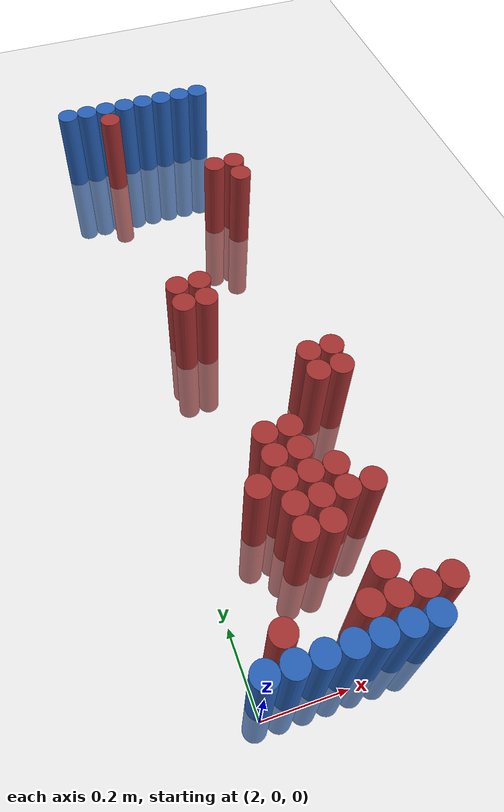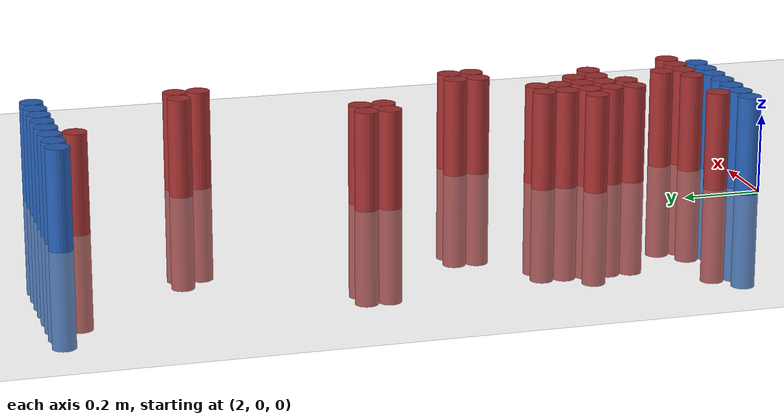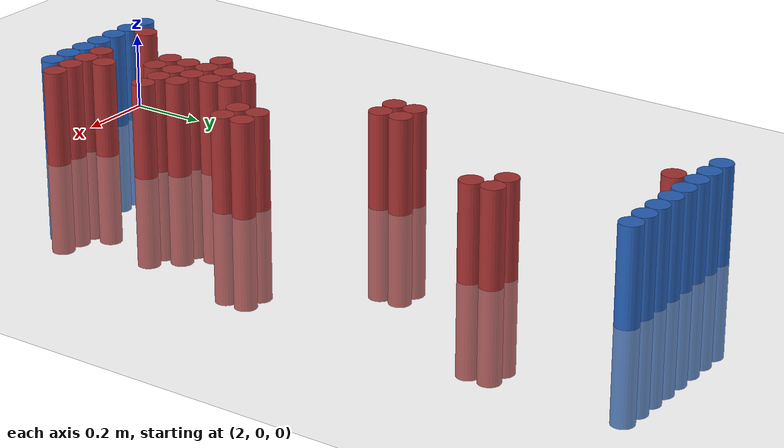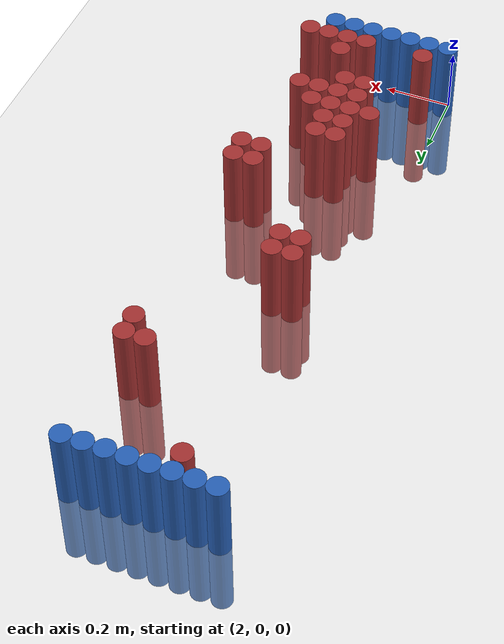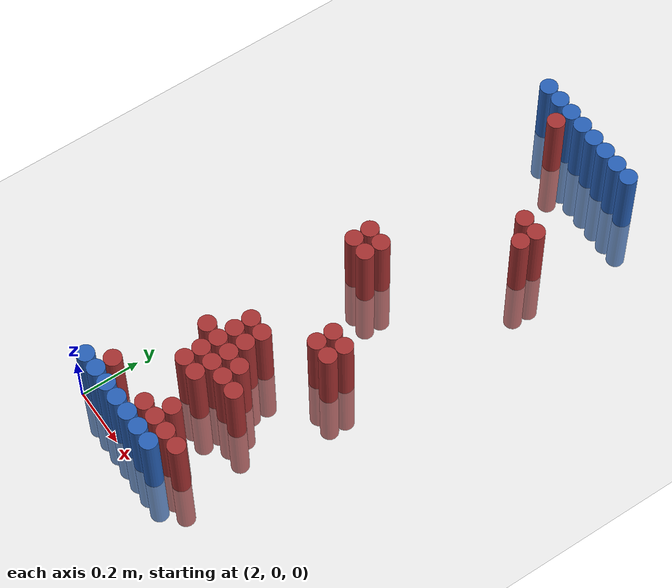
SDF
<sdf version="1.6">
 <world name="default">
  <model name="ground_plane">
   <static>1</static>
   <link name="link">
    <collision name="collision">
     <geometry><plane><normal>0 0 1</normal><size>100 100</size></plane></geometry>
     <surface><friction><ode><mu>100</mu><mu2>50</mu2></ode></friction></surface>
    </collision>
    <visual name="visual">
     <cast_shadows>0</cast_shadows>
     <geometry><plane><normal>0 0 1</normal><size>100 100</size></plane></geometry>
     <material>
      <script><uri>file://media/materials/scripts/gazebo.material</uri><name>Gazebo/Grey</name></script>
     </material>
    </visual>
   </link>
  </model>
  <model name="unit_cylinder_93">
   <static>1</static>
   <pose>2.010000 0.030000 0.000000 0.000000 0.000000 0.000000</pose>
   <link name="link">
    <inertial>
     <mass>1</mass>
     <inertia><ixx>0.145833</ixx><ixy>0</ixy><ixz>0</ixz><iyy>0.145833</iyy><iyz>0</iyz><izz>0.125</izz></inertia>
    </inertial>
    <collision name="collision">
     <geometry><cylinder><radius>0.030000</radius><length>0.5</length></cylinder></geometry>
    </collision>
    <visual name="visual">
     <geometry><cylinder><radius>0.030000</radius><length>0.5</length></cylinder></geometry>
     <material>
      <ambient>0.152000 0.379000 0.720000 1</ambient>
      <diffuse>0.152000 0.379000 0.720000 1</diffuse>
     </material>
     <material>
      <script><name>Gazebo/Grey</name><uri>file://media/materials/scripts/gazebo.material</uri></script>
     </material>
    </visual>
   </link>
  </model>
  <model name="unit_cylinder_94">
   <static>1</static>
   <pose>2.010000 1.770000 0.000000 0.000000 0.000000 0.000000</pose>
   <link name="link">
    <inertial>
     <mass>1</mass>
     <inertia><ixx>0.145833</ixx><ixy>0</ixy><ixz>0</ixz><iyy>0.145833</iyy><iyz>0</iyz><izz>0.125</izz></inertia>
    </inertial>
    <collision name="collision">
     <geometry><cylinder><radius>0.030000</radius><length>0.5</length></cylinder></geometry>
    </collision>
    <visual name="visual">
     <geometry><cylinder><radius>0.030000</radius><length>0.5</length></cylinder></geometry>
     <material>
      <ambient>0.152000 0.379000 0.720000 1</ambient>
      <diffuse>0.152000 0.379000 0.720000 1</diffuse>
     </material>
     <material>
      <script><name>Gazebo/Grey</name><uri>file://media/materials/scripts/gazebo.material</uri></script>
     </material>
    </visual>
   </link>
  </model>
  <model name="unit_cylinder_95">
   <static>1</static>
   <pose>2.070000 1.770000 0.000000 0.000000 0.000000 0.000000</pose>
   <link name="link">
    <inertial>
     <mass>1</mass>
     <inertia><ixx>0.145833</ixx><ixy>0</ixy><ixz>0</ixz><iyy>0.145833</iyy><iyz>0</iyz><izz>0.125</izz></inertia>
    </inertial>
    <collision name="collision">
     <geometry><cylinder><radius>0.030000</radius><length>0.5</length></cylinder></geometry>
    </collision>
    <visual name="visual">
     <geometry><cylinder><radius>0.030000</radius><length>0.5</length></cylinder></geometry>
     <material>
      <ambient>0.152000 0.379000 0.720000 1</ambient>
      <diffuse>0.152000 0.379000 0.720000 1</diffuse>
     </material>
     <material>
      <script><name>Gazebo/Grey</name><uri>file://media/materials/scripts/gazebo.material</uri></script>
     </material>
    </visual>
   </link>
  </model>
  <model name="unit_cylinder_96">
   <static>1</static>
   <pose>2.130000 1.770000 0.000000 0.000000 0.000000 0.000000</pose>
   <link name="link">
    <inertial>
     <mass>1</mass>
     <inertia><ixx>0.145833</ixx><ixy>0</ixy><ixz>0</ixz><iyy>0.145833</iyy><iyz>0</iyz><izz>0.125</izz></inertia>
    </inertial>
    <collision name="collision">
     <geometry><cylinder><radius>0.030000</radius><length>0.5</length></cylinder></geometry>
    </collision>
    <visual name="visual">
     <geometry><cylinder><radius>0.030000</radius><length>0.5</length></cylinder></geometry>
     <material>
      <ambient>0.152000 0.379000 0.720000 1</ambient>
      <diffuse>0.152000 0.379000 0.720000 1</diffuse>
     </material>
     <material>
      <script><name>Gazebo/Grey</name><uri>file://media/materials/scripts/gazebo.material</uri></script>
     </material>
    </visual>
   </link>
  </model>
  <model name="unit_cylinder_97">
   <static>1</static>
   <pose>2.190000 1.770000 0.000000 0.000000 0.000000 0.000000</pose>
   <link name="link">
    <inertial>
     <mass>1</mass>
     <inertia><ixx>0.145833</ixx><ixy>0</ixy><ixz>0</ixz><iyy>0.145833</iyy><iyz>0</iyz><izz>0.125</izz></inertia>
    </inertial>
    <collision name="collision">
     <geometry><cylinder><radius>0.030000</radius><length>0.5</length></cylinder></geometry>
    </collision>
    <visual name="visual">
     <geometry><cylinder><radius>0.030000</radius><length>0.5</length></cylinder></geometry>
     <material>
      <ambient>0.152000 0.379000 0.720000 1</ambient>
      <diffuse>0.152000 0.379000 0.720000 1</diffuse>
     </material>
     <material>
      <script><name>Gazebo/Grey</name><uri>file://media/materials/scripts/gazebo.material</uri></script>
     </material>
    </visual>
   </link>
  </model>
  <model name="unit_cylinder_98">
   <static>1</static>
   <pose>2.250000 1.770000 0.000000 0.000000 0.000000 0.000000</pose>
   <link name="link">
    <inertial>
     <mass>1</mass>
     <inertia><ixx>0.145833</ixx><ixy>0</ixy><ixz>0</ixz><iyy>0.145833</iyy><iyz>0</iyz><izz>0.125</izz></inertia>
    </inertial>
    <collision name="collision">
     <geometry><cylinder><radius>0.030000</radius><length>0.5</length></cylinder></geometry>
    </collision>
    <visual name="visual">
     <geometry><cylinder><radius>0.030000</radius><length>0.5</length></cylinder></geometry>
     <material>
      <ambient>0.152000 0.379000 0.720000 1</ambient>
      <diffuse>0.152000 0.379000 0.720000 1</diffuse>
     </material>
     <material>
      <script><name>Gazebo/Grey</name><uri>file://media/materials/scripts/gazebo.material</uri></script>
     </material>
    </visual>
   </link>
  </model>
  <model name="unit_cylinder_99">
   <static>1</static>
   <pose>2.310000 1.770000 0.000000 0.000000 0.000000 0.000000</pose>
   <link name="link">
    <inertial>
     <mass>1</mass>
     <inertia><ixx>0.145833</ixx><ixy>0</ixy><ixz>0</ixz><iyy>0.145833</iyy><iyz>0</iyz><izz>0.125</izz></inertia>
    </inertial>
    <collision name="collision">
     <geometry><cylinder><radius>0.030000</radius><length>0.5</length></cylinder></geometry>
    </collision>
    <visual name="visual">
     <geometry><cylinder><radius>0.030000</radius><length>0.5</length></cylinder></geometry>
     <material>
      <ambient>0.152000 0.379000 0.720000 1</ambient>
      <diffuse>0.152000 0.379000 0.720000 1</diffuse>
     </material>
     <material>
      <script><name>Gazebo/Grey</name><uri>file://media/materials/scripts/gazebo.material</uri></script>
     </material>
    </visual>
   </link>
  </model>
  <model name="unit_cylinder_100">
   <static>1</static>
   <pose>2.370000 1.770000 0.000000 0.000000 0.000000 0.000000</pose>
   <link name="link">
    <inertial>
     <mass>1</mass>
     <inertia><ixx>0.145833</ixx><ixy>0</ixy><ixz>0</ixz><iyy>0.145833</iyy><iyz>0</iyz><izz>0.125</izz></inertia>
    </inertial>
    <collision name="collision">
     <geometry><cylinder><radius>0.030000</radius><length>0.5</length></cylinder></geometry>
    </collision>
    <visual name="visual">
     <geometry><cylinder><radius>0.030000</radius><length>0.5</length></cylinder></geometry>
     <material>
      <ambient>0.152000 0.379000 0.720000 1</ambient>
      <diffuse>0.152000 0.379000 0.720000 1</diffuse>
     </material>
     <material>
      <script><name>Gazebo/Grey</name><uri>file://media/materials/scripts/gazebo.material</uri></script>
     </material>
    </visual>
   </link>
  </model>
  <model name="unit_cylinder_101">
   <static>1</static>
   <pose>2.430000 1.770000 0.000000 0.000000 0.000000 0.000000</pose>
   <link name="link">
    <inertial>
     <mass>1</mass>
     <inertia><ixx>0.145833</ixx><ixy>0</ixy><ixz>0</ixz><iyy>0.145833</iyy><iyz>0</iyz><izz>0.125</izz></inertia>
    </inertial>
    <collision name="collision">
     <geometry><cylinder><radius>0.030000</radius><length>0.5</length></cylinder></geometry>
    </collision>
    <visual name="visual">
     <geometry><cylinder><radius>0.030000</radius><length>0.5</length></cylinder></geometry>
     <material>
      <ambient>0.152000 0.379000 0.720000 1</ambient>
      <diffuse>0.152000 0.379000 0.720000 1</diffuse>
     </material>
     <material>
      <script><name>Gazebo/Grey</name><uri>file://media/materials/scripts/gazebo.material</uri></script>
     </material>
    </visual>
   </link>
  </model>
  <model name="unit_cylinder_125">
   <static>1</static>
   <pose>2.130000 1.710000 0.000000 0.000000 0.000000 0.000000</pose>
   <link name="link">
    <inertial>
     <mass>1</mass>
     <inertia><ixx>0.145833</ixx><ixy>0</ixy><ixz>0</ixz><iyy>0.145833</iyy><iyz>0</iyz><izz>0.125</izz></inertia>
    </inertial>
    <collision name="collision">
     <geometry><cylinder><radius>0.030000</radius><length>0.5</length></cylinder></geometry>
    </collision>
    <visual name="visual">
     <geometry><cylinder><radius>0.030000</radius><length>0.5</length></cylinder></geometry>
     <material>
      <ambient>0.648000 0.192000 0.192000 1</ambient>
      <diffuse>0.648000 0.192000 0.192000 1</diffuse>
     </material>
     <material>
      <script><name>Gazebo/Grey</name><uri>file://media/materials/scripts/gazebo.material</uri></script>
     </material>
    </visual>
   </link>
  </model>
  <model name="unit_cylinder_153">
   <static>1</static>
   <pose>2.370000 1.410000 0.000000 0.000000 0.000000 0.000000</pose>
   <link name="link">
    <inertial>
     <mass>1</mass>
     <inertia><ixx>0.145833</ixx><ixy>0</ixy><ixz>0</ixz><iyy>0.145833</iyy><iyz>0</iyz><izz>0.125</izz></inertia>
    </inertial>
    <collision name="collision">
     <geometry><cylinder><radius>0.030000</radius><length>0.5</length></cylinder></geometry>
    </collision>
    <visual name="visual">
     <geometry><cylinder><radius>0.030000</radius><length>0.5</length></cylinder></geometry>
     <material>
      <ambient>0.648000 0.192000 0.192000 1</ambient>
      <diffuse>0.648000 0.192000 0.192000 1</diffuse>
     </material>
     <material>
      <script><name>Gazebo/Grey</name><uri>file://media/materials/scripts/gazebo.material</uri></script>
     </material>
    </visual>
   </link>
  </model>
  <model name="unit_cylinder_154">
   <static>1</static>
   <pose>2.430000 1.410000 0.000000 0.000000 0.000000 0.000000</pose>
   <link name="link">
    <inertial>
     <mass>1</mass>
     <inertia><ixx>0.145833</ixx><ixy>0</ixy><ixz>0</ixz><iyy>0.145833</iyy><iyz>0</iyz><izz>0.125</izz></inertia>
    </inertial>
    <collision name="collision">
     <geometry><cylinder><radius>0.030000</radius><length>0.5</length></cylinder></geometry>
    </collision>
    <visual name="visual">
     <geometry><cylinder><radius>0.030000</radius><length>0.5</length></cylinder></geometry>
     <material>
      <ambient>0.648000 0.192000 0.192000 1</ambient>
      <diffuse>0.648000 0.192000 0.192000 1</diffuse>
     </material>
     <material>
      <script><name>Gazebo/Grey</name><uri>file://media/materials/scripts/gazebo.material</uri></script>
     </material>
    </visual>
   </link>
  </model>
  <model name="unit_cylinder_158">
   <static>1</static>
   <pose>2.430000 1.350000 0.000000 0.000000 0.000000 0.000000</pose>
   <link name="link">
    <inertial>
     <mass>1</mass>
     <inertia><ixx>0.145833</ixx><ixy>0</ixy><ixz>0</ixz><iyy>0.145833</iyy><iyz>0</iyz><izz>0.125</izz></inertia>
    </inertial>
    <collision name="collision">
     <geometry><cylinder><radius>0.030000</radius><length>0.5</length></cylinder></geometry>
    </collision>
    <visual name="visual">
     <geometry><cylinder><radius>0.030000</radius><length>0.5</length></cylinder></geometry>
     <material>
      <ambient>0.648000 0.192000 0.192000 1</ambient>
      <diffuse>0.648000 0.192000 0.192000 1</diffuse>
     </material>
     <material>
      <script><name>Gazebo/Grey</name><uri>file://media/materials/scripts/gazebo.material</uri></script>
     </material>
    </visual>
   </link>
  </model>
  <model name="unit_cylinder_183">
   <static>1</static>
   <pose>2.130000 0.990000 0.000000 0.000000 0.000000 0.000000</pose>
   <link name="link">
    <inertial>
     <mass>1</mass>
     <inertia><ixx>0.145833</ixx><ixy>0</ixy><ixz>0</ixz><iyy>0.145833</iyy><iyz>0</iyz><izz>0.125</izz></inertia>
    </inertial>
    <collision name="collision">
     <geometry><cylinder><radius>0.030000</radius><length>0.5</length></cylinder></geometry>
    </collision>
    <visual name="visual">
     <geometry><cylinder><radius>0.030000</radius><length>0.5</length></cylinder></geometry>
     <material>
      <ambient>0.648000 0.192000 0.192000 1</ambient>
      <diffuse>0.648000 0.192000 0.192000 1</diffuse>
     </material>
     <material>
      <script><name>Gazebo/Grey</name><uri>file://media/materials/scripts/gazebo.material</uri></script>
     </material>
    </visual>
   </link>
  </model>
  <model name="unit_cylinder_184">
   <static>1</static>
   <pose>2.190000 0.990000 0.000000 0.000000 0.000000 0.000000</pose>
   <link name="link">
    <inertial>
     <mass>1</mass>
     <inertia><ixx>0.145833</ixx><ixy>0</ixy><ixz>0</ixz><iyy>0.145833</iyy><iyz>0</iyz><izz>0.125</izz></inertia>
    </inertial>
    <collision name="collision">
     <geometry><cylinder><radius>0.030000</radius><length>0.5</length></cylinder></geometry>
    </collision>
    <visual name="visual">
     <geometry><cylinder><radius>0.030000</radius><length>0.5</length></cylinder></geometry>
     <material>
      <ambient>0.648000 0.192000 0.192000 1</ambient>
      <diffuse>0.648000 0.192000 0.192000 1</diffuse>
     </material>
     <material>
      <script><name>Gazebo/Grey</name><uri>file://media/materials/scripts/gazebo.material</uri></script>
     </material>
    </visual>
   </link>
  </model>
  <model name="unit_cylinder_185">
   <static>1</static>
   <pose>2.130000 0.930000 0.000000 0.000000 0.000000 0.000000</pose>
   <link name="link">
    <inertial>
     <mass>1</mass>
     <inertia><ixx>0.145833</ixx><ixy>0</ixy><ixz>0</ixz><iyy>0.145833</iyy><iyz>0</iyz><izz>0.125</izz></inertia>
    </inertial>
    <collision name="collision">
     <geometry><cylinder><radius>0.030000</radius><length>0.5</length></cylinder></geometry>
    </collision>
    <visual name="visual">
     <geometry><cylinder><radius>0.030000</radius><length>0.5</length></cylinder></geometry>
     <material>
      <ambient>0.648000 0.192000 0.192000 1</ambient>
      <diffuse>0.648000 0.192000 0.192000 1</diffuse>
     </material>
     <material>
      <script><name>Gazebo/Grey</name><uri>file://media/materials/scripts/gazebo.material</uri></script>
     </material>
    </visual>
   </link>
  </model>
  <model name="unit_cylinder_186">
   <static>1</static>
   <pose>2.190000 0.930000 0.000000 0.000000 0.000000 0.000000</pose>
   <link name="link">
    <inertial>
     <mass>1</mass>
     <inertia><ixx>0.145833</ixx><ixy>0</ixy><ixz>0</ixz><iyy>0.145833</iyy><iyz>0</iyz><izz>0.125</izz></inertia>
    </inertial>
    <collision name="collision">
     <geometry><cylinder><radius>0.030000</radius><length>0.5</length></cylinder></geometry>
    </collision>
    <visual name="visual">
     <geometry><cylinder><radius>0.030000</radius><length>0.5</length></cylinder></geometry>
     <material>
      <ambient>0.648000 0.192000 0.192000 1</ambient>
      <diffuse>0.648000 0.192000 0.192000 1</diffuse>
     </material>
     <material>
      <script><name>Gazebo/Grey</name><uri>file://media/materials/scripts/gazebo.material</uri></script>
     </material>
    </visual>
   </link>
  </model>
  <model name="unit_cylinder_187">
   <static>1</static>
   <pose>2.370000 0.690000 0.000000 0.000000 0.000000 0.000000</pose>
   <link name="link">
    <inertial>
     <mass>1</mass>
     <inertia><ixx>0.145833</ixx><ixy>0</ixy><ixz>0</ixz><iyy>0.145833</iyy><iyz>0</iyz><izz>0.125</izz></inertia>
    </inertial>
    <collision name="collision">
     <geometry><cylinder><radius>0.030000</radius><length>0.5</length></cylinder></geometry>
    </collision>
    <visual name="visual">
     <geometry><cylinder><radius>0.030000</radius><length>0.5</length></cylinder></geometry>
     <material>
      <ambient>0.648000 0.192000 0.192000 1</ambient>
      <diffuse>0.648000 0.192000 0.192000 1</diffuse>
     </material>
     <material>
      <script><name>Gazebo/Grey</name><uri>file://media/materials/scripts/gazebo.material</uri></script>
     </material>
    </visual>
   </link>
  </model>
  <model name="unit_cylinder_188">
   <static>1</static>
   <pose>2.430000 0.690000 0.000000 0.000000 0.000000 0.000000</pose>
   <link name="link">
    <inertial>
     <mass>1</mass>
     <inertia><ixx>0.145833</ixx><ixy>0</ixy><ixz>0</ixz><iyy>0.145833</iyy><iyz>0</iyz><izz>0.125</izz></inertia>
    </inertial>
    <collision name="collision">
     <geometry><cylinder><radius>0.030000</radius><length>0.5</length></cylinder></geometry>
    </collision>
    <visual name="visual">
     <geometry><cylinder><radius>0.030000</radius><length>0.5</length></cylinder></geometry>
     <material>
      <ambient>0.648000 0.192000 0.192000 1</ambient>
      <diffuse>0.648000 0.192000 0.192000 1</diffuse>
     </material>
     <material>
      <script><name>Gazebo/Grey</name><uri>file://media/materials/scripts/gazebo.material</uri></script>
     </material>
    </visual>
   </link>
  </model>
  <model name="unit_cylinder_189">
   <static>1</static>
   <pose>2.370000 0.630000 0.000000 0.000000 0.000000 0.000000</pose>
   <link name="link">
    <inertial>
     <mass>1</mass>
     <inertia><ixx>0.145833</ixx><ixy>0</ixy><ixz>0</ixz><iyy>0.145833</iyy><iyz>0</iyz><izz>0.125</izz></inertia>
    </inertial>
    <collision name="collision">
     <geometry><cylinder><radius>0.030000</radius><length>0.5</length></cylinder></geometry>
    </collision>
    <visual name="visual">
     <geometry><cylinder><radius>0.030000</radius><length>0.5</length></cylinder></geometry>
     <material>
      <ambient>0.648000 0.192000 0.192000 1</ambient>
      <diffuse>0.648000 0.192000 0.192000 1</diffuse>
     </material>
     <material>
      <script><name>Gazebo/Grey</name><uri>file://media/materials/scripts/gazebo.material</uri></script>
     </material>
    </visual>
   </link>
  </model>
  <model name="unit_cylinder_190">
   <static>1</static>
   <pose>2.430000 0.630000 0.000000 0.000000 0.000000 0.000000</pose>
   <link name="link">
    <inertial>
     <mass>1</mass>
     <inertia><ixx>0.145833</ixx><ixy>0</ixy><ixz>0</ixz><iyy>0.145833</iyy><iyz>0</iyz><izz>0.125</izz></inertia>
    </inertial>
    <collision name="collision">
     <geometry><cylinder><radius>0.030000</radius><length>0.5</length></cylinder></geometry>
    </collision>
    <visual name="visual">
     <geometry><cylinder><radius>0.030000</radius><length>0.5</length></cylinder></geometry>
     <material>
      <ambient>0.648000 0.192000 0.192000 1</ambient>
      <diffuse>0.648000 0.192000 0.192000 1</diffuse>
     </material>
     <material>
      <script><name>Gazebo/Grey</name><uri>file://media/materials/scripts/gazebo.material</uri></script>
     </material>
    </visual>
   </link>
  </model>
  <model name="unit_cylinder_191">
   <static>1</static>
   <pose>2.190000 0.510000 0.000000 0.000000 0.000000 0.000000</pose>
   <link name="link">
    <inertial>
     <mass>1</mass>
     <inertia><ixx>0.145833</ixx><ixy>0</ixy><ixz>0</ixz><iyy>0.145833</iyy><iyz>0</iyz><izz>0.125</izz></inertia>
    </inertial>
    <collision name="collision">
     <geometry><cylinder><radius>0.030000</radius><length>0.5</length></cylinder></geometry>
    </collision>
    <visual name="visual">
     <geometry><cylinder><radius>0.030000</radius><length>0.5</length></cylinder></geometry>
     <material>
      <ambient>0.648000 0.192000 0.192000 1</ambient>
      <diffuse>0.648000 0.192000 0.192000 1</diffuse>
     </material>
     <material>
      <script><name>Gazebo/Grey</name><uri>file://media/materials/scripts/gazebo.material</uri></script>
     </material>
    </visual>
   </link>
  </model>
  <model name="unit_cylinder_192">
   <static>1</static>
   <pose>2.250000 0.510000 0.000000 0.000000 0.000000 0.000000</pose>
   <link name="link">
    <inertial>
     <mass>1</mass>
     <inertia><ixx>0.145833</ixx><ixy>0</ixy><ixz>0</ixz><iyy>0.145833</iyy><iyz>0</iyz><izz>0.125</izz></inertia>
    </inertial>
    <collision name="collision">
     <geometry><cylinder><radius>0.030000</radius><length>0.5</length></cylinder></geometry>
    </collision>
    <visual name="visual">
     <geometry><cylinder><radius>0.030000</radius><length>0.5</length></cylinder></geometry>
     <material>
      <ambient>0.648000 0.192000 0.192000 1</ambient>
      <diffuse>0.648000 0.192000 0.192000 1</diffuse>
     </material>
     <material>
      <script><name>Gazebo/Grey</name><uri>file://media/materials/scripts/gazebo.material</uri></script>
     </material>
    </visual>
   </link>
  </model>
  <model name="unit_cylinder_197">
   <static>1</static>
   <pose>2.190000 0.450000 0.000000 0.000000 0.000000 0.000000</pose>
   <link name="link">
    <inertial>
     <mass>1</mass>
     <inertia><ixx>0.145833</ixx><ixy>0</ixy><ixz>0</ixz><iyy>0.145833</iyy><iyz>0</iyz><izz>0.125</izz></inertia>
    </inertial>
    <collision name="collision">
     <geometry><cylinder><radius>0.030000</radius><length>0.5</length></cylinder></geometry>
    </collision>
    <visual name="visual">
     <geometry><cylinder><radius>0.030000</radius><length>0.5</length></cylinder></geometry>
     <material>
      <ambient>0.648000 0.192000 0.192000 1</ambient>
      <diffuse>0.648000 0.192000 0.192000 1</diffuse>
     </material>
     <material>
      <script><name>Gazebo/Grey</name><uri>file://media/materials/scripts/gazebo.material</uri></script>
     </material>
    </visual>
   </link>
  </model>
  <model name="unit_cylinder_198">
   <static>1</static>
   <pose>2.250000 0.450000 0.000000 0.000000 0.000000 0.000000</pose>
   <link name="link">
    <inertial>
     <mass>1</mass>
     <inertia><ixx>0.145833</ixx><ixy>0</ixy><ixz>0</ixz><iyy>0.145833</iyy><iyz>0</iyz><izz>0.125</izz></inertia>
    </inertial>
    <collision name="collision">
     <geometry><cylinder><radius>0.030000</radius><length>0.5</length></cylinder></geometry>
    </collision>
    <visual name="visual">
     <geometry><cylinder><radius>0.030000</radius><length>0.5</length></cylinder></geometry>
     <material>
      <ambient>0.648000 0.192000 0.192000 1</ambient>
      <diffuse>0.648000 0.192000 0.192000 1</diffuse>
     </material>
     <material>
      <script><name>Gazebo/Grey</name><uri>file://media/materials/scripts/gazebo.material</uri></script>
     </material>
    </visual>
   </link>
  </model>
  <model name="unit_cylinder_202">
   <static>1</static>
   <pose>2.130000 0.390000 0.000000 0.000000 0.000000 0.000000</pose>
   <link name="link">
    <inertial>
     <mass>1</mass>
     <inertia><ixx>0.145833</ixx><ixy>0</ixy><ixz>0</ixz><iyy>0.145833</iyy><iyz>0</iyz><izz>0.125</izz></inertia>
    </inertial>
    <collision name="collision">
     <geometry><cylinder><radius>0.030000</radius><length>0.5</length></cylinder></geometry>
    </collision>
    <visual name="visual">
     <geometry><cylinder><radius>0.030000</radius><length>0.5</length></cylinder></geometry>
     <material>
      <ambient>0.648000 0.192000 0.192000 1</ambient>
      <diffuse>0.648000 0.192000 0.192000 1</diffuse>
     </material>
     <material>
      <script><name>Gazebo/Grey</name><uri>file://media/materials/scripts/gazebo.material</uri></script>
     </material>
    </visual>
   </link>
  </model>
  <model name="unit_cylinder_203">
   <static>1</static>
   <pose>2.190000 0.390000 0.000000 0.000000 0.000000 0.000000</pose>
   <link name="link">
    <inertial>
     <mass>1</mass>
     <inertia><ixx>0.145833</ixx><ixy>0</ixy><ixz>0</ixz><iyy>0.145833</iyy><iyz>0</iyz><izz>0.125</izz></inertia>
    </inertial>
    <collision name="collision">
     <geometry><cylinder><radius>0.030000</radius><length>0.5</length></cylinder></geometry>
    </collision>
    <visual name="visual">
     <geometry><cylinder><radius>0.030000</radius><length>0.5</length></cylinder></geometry>
     <material>
      <ambient>0.648000 0.192000 0.192000 1</ambient>
      <diffuse>0.648000 0.192000 0.192000 1</diffuse>
     </material>
     <material>
      <script><name>Gazebo/Grey</name><uri>file://media/materials/scripts/gazebo.material</uri></script>
     </material>
    </visual>
   </link>
  </model>
  <model name="unit_cylinder_204">
   <static>1</static>
   <pose>2.250000 0.390000 0.000000 0.000000 0.000000 0.000000</pose>
   <link name="link">
    <inertial>
     <mass>1</mass>
     <inertia><ixx>0.145833</ixx><ixy>0</ixy><ixz>0</ixz><iyy>0.145833</iyy><iyz>0</iyz><izz>0.125</izz></inertia>
    </inertial>
    <collision name="collision">
     <geometry><cylinder><radius>0.030000</radius><length>0.5</length></cylinder></geometry>
    </collision>
    <visual name="visual">
     <geometry><cylinder><radius>0.030000</radius><length>0.5</length></cylinder></geometry>
     <material>
      <ambient>0.648000 0.192000 0.192000 1</ambient>
      <diffuse>0.648000 0.192000 0.192000 1</diffuse>
     </material>
     <material>
      <script><name>Gazebo/Grey</name><uri>file://media/materials/scripts/gazebo.material</uri></script>
     </material>
    </visual>
   </link>
  </model>
  <model name="unit_cylinder_205">
   <static>1</static>
   <pose>2.310000 0.390000 0.000000 0.000000 0.000000 0.000000</pose>
   <link name="link">
    <inertial>
     <mass>1</mass>
     <inertia><ixx>0.145833</ixx><ixy>0</ixy><ixz>0</ixz><iyy>0.145833</iyy><iyz>0</iyz><izz>0.125</izz></inertia>
    </inertial>
    <collision name="collision">
     <geometry><cylinder><radius>0.030000</radius><length>0.5</length></cylinder></geometry>
    </collision>
    <visual name="visual">
     <geometry><cylinder><radius>0.030000</radius><length>0.5</length></cylinder></geometry>
     <material>
      <ambient>0.648000 0.192000 0.192000 1</ambient>
      <diffuse>0.648000 0.192000 0.192000 1</diffuse>
     </material>
     <material>
      <script><name>Gazebo/Grey</name><uri>file://media/materials/scripts/gazebo.material</uri></script>
     </material>
    </visual>
   </link>
  </model>
  <model name="unit_cylinder_210">
   <static>1</static>
   <pose>2.190000 0.330000 0.000000 0.000000 0.000000 0.000000</pose>
   <link name="link">
    <inertial>
     <mass>1</mass>
     <inertia><ixx>0.145833</ixx><ixy>0</ixy><ixz>0</ixz><iyy>0.145833</iyy><iyz>0</iyz><izz>0.125</izz></inertia>
    </inertial>
    <collision name="collision">
     <geometry><cylinder><radius>0.030000</radius><length>0.5</length></cylinder></geometry>
    </collision>
    <visual name="visual">
     <geometry><cylinder><radius>0.030000</radius><length>0.5</length></cylinder></geometry>
     <material>
      <ambient>0.648000 0.192000 0.192000 1</ambient>
      <diffuse>0.648000 0.192000 0.192000 1</diffuse>
     </material>
     <material>
      <script><name>Gazebo/Grey</name><uri>file://media/materials/scripts/gazebo.material</uri></script>
     </material>
    </visual>
   </link>
  </model>
  <model name="unit_cylinder_211">
   <static>1</static>
   <pose>2.250000 0.330000 0.000000 0.000000 0.000000 0.000000</pose>
   <link name="link">
    <inertial>
     <mass>1</mass>
     <inertia><ixx>0.145833</ixx><ixy>0</ixy><ixz>0</ixz><iyy>0.145833</iyy><iyz>0</iyz><izz>0.125</izz></inertia>
    </inertial>
    <collision name="collision">
     <geometry><cylinder><radius>0.030000</radius><length>0.5</length></cylinder></geometry>
    </collision>
    <visual name="visual">
     <geometry><cylinder><radius>0.030000</radius><length>0.5</length></cylinder></geometry>
     <material>
      <ambient>0.648000 0.192000 0.192000 1</ambient>
      <diffuse>0.648000 0.192000 0.192000 1</diffuse>
     </material>
     <material>
      <script><name>Gazebo/Grey</name><uri>file://media/materials/scripts/gazebo.material</uri></script>
     </material>
    </visual>
   </link>
  </model>
  <model name="unit_cylinder_212">
   <static>1</static>
   <pose>2.310000 0.330000 0.000000 0.000000 0.000000 0.000000</pose>
   <link name="link">
    <inertial>
     <mass>1</mass>
     <inertia><ixx>0.145833</ixx><ixy>0</ixy><ixz>0</ixz><iyy>0.145833</iyy><iyz>0</iyz><izz>0.125</izz></inertia>
    </inertial>
    <collision name="collision">
     <geometry><cylinder><radius>0.030000</radius><length>0.5</length></cylinder></geometry>
    </collision>
    <visual name="visual">
     <geometry><cylinder><radius>0.030000</radius><length>0.5</length></cylinder></geometry>
     <material>
      <ambient>0.648000 0.192000 0.192000 1</ambient>
      <diffuse>0.648000 0.192000 0.192000 1</diffuse>
     </material>
     <material>
      <script><name>Gazebo/Grey</name><uri>file://media/materials/scripts/gazebo.material</uri></script>
     </material>
    </visual>
   </link>
  </model>
  <model name="unit_cylinder_213">
   <static>1</static>
   <pose>2.370000 0.330000 0.000000 0.000000 0.000000 0.000000</pose>
   <link name="link">
    <inertial>
     <mass>1</mass>
     <inertia><ixx>0.145833</ixx><ixy>0</ixy><ixz>0</ixz><iyy>0.145833</iyy><iyz>0</iyz><izz>0.125</izz></inertia>
    </inertial>
    <collision name="collision">
     <geometry><cylinder><radius>0.030000</radius><length>0.5</length></cylinder></geometry>
    </collision>
    <visual name="visual">
     <geometry><cylinder><radius>0.030000</radius><length>0.5</length></cylinder></geometry>
     <material>
      <ambient>0.648000 0.192000 0.192000 1</ambient>
      <diffuse>0.648000 0.192000 0.192000 1</diffuse>
     </material>
     <material>
      <script><name>Gazebo/Grey</name><uri>file://media/materials/scripts/gazebo.material</uri></script>
     </material>
    </visual>
   </link>
  </model>
  <model name="unit_cylinder_216">
   <static>1</static>
   <pose>2.190000 0.270000 0.000000 0.000000 0.000000 0.000000</pose>
   <link name="link">
    <inertial>
     <mass>1</mass>
     <inertia><ixx>0.145833</ixx><ixy>0</ixy><ixz>0</ixz><iyy>0.145833</iyy><iyz>0</iyz><izz>0.125</izz></inertia>
    </inertial>
    <collision name="collision">
     <geometry><cylinder><radius>0.030000</radius><length>0.5</length></cylinder></geometry>
    </collision>
    <visual name="visual">
     <geometry><cylinder><radius>0.030000</radius><length>0.5</length></cylinder></geometry>
     <material>
      <ambient>0.648000 0.192000 0.192000 1</ambient>
      <diffuse>0.648000 0.192000 0.192000 1</diffuse>
     </material>
     <material>
      <script><name>Gazebo/Grey</name><uri>file://media/materials/scripts/gazebo.material</uri></script>
     </material>
    </visual>
   </link>
  </model>
  <model name="unit_cylinder_217">
   <static>1</static>
   <pose>2.250000 0.270000 0.000000 0.000000 0.000000 0.000000</pose>
   <link name="link">
    <inertial>
     <mass>1</mass>
     <inertia><ixx>0.145833</ixx><ixy>0</ixy><ixz>0</ixz><iyy>0.145833</iyy><iyz>0</iyz><izz>0.125</izz></inertia>
    </inertial>
    <collision name="collision">
     <geometry><cylinder><radius>0.030000</radius><length>0.5</length></cylinder></geometry>
    </collision>
    <visual name="visual">
     <geometry><cylinder><radius>0.030000</radius><length>0.5</length></cylinder></geometry>
     <material>
      <ambient>0.648000 0.192000 0.192000 1</ambient>
      <diffuse>0.648000 0.192000 0.192000 1</diffuse>
     </material>
     <material>
      <script><name>Gazebo/Grey</name><uri>file://media/materials/scripts/gazebo.material</uri></script>
     </material>
    </visual>
   </link>
  </model>
  <model name="unit_cylinder_222">
   <static>1</static>
   <pose>2.310000 0.150000 0.000000 0.000000 0.000000 0.000000</pose>
   <link name="link">
    <inertial>
     <mass>1</mass>
     <inertia><ixx>0.145833</ixx><ixy>0</ixy><ixz>0</ixz><iyy>0.145833</iyy><iyz>0</iyz><izz>0.125</izz></inertia>
    </inertial>
    <collision name="collision">
     <geometry><cylinder><radius>0.030000</radius><length>0.5</length></cylinder></geometry>
    </collision>
    <visual name="visual">
     <geometry><cylinder><radius>0.030000</radius><length>0.5</length></cylinder></geometry>
     <material>
      <ambient>0.648000 0.192000 0.192000 1</ambient>
      <diffuse>0.648000 0.192000 0.192000 1</diffuse>
     </material>
     <material>
      <script><name>Gazebo/Grey</name><uri>file://media/materials/scripts/gazebo.material</uri></script>
     </material>
    </visual>
   </link>
  </model>
  <model name="unit_cylinder_231">
   <static>1</static>
   <pose>2.070000 0.090000 0.000000 0.000000 0.000000 0.000000</pose>
   <link name="link">
    <inertial>
     <mass>1</mass>
     <inertia><ixx>0.145833</ixx><ixy>0</ixy><ixz>0</ixz><iyy>0.145833</iyy><iyz>0</iyz><izz>0.125</izz></inertia>
    </inertial>
    <collision name="collision">
     <geometry><cylinder><radius>0.030000</radius><length>0.5</length></cylinder></geometry>
    </collision>
    <visual name="visual">
     <geometry><cylinder><radius>0.030000</radius><length>0.5</length></cylinder></geometry>
     <material>
      <ambient>0.648000 0.192000 0.192000 1</ambient>
      <diffuse>0.648000 0.192000 0.192000 1</diffuse>
     </material>
     <material>
      <script><name>Gazebo/Grey</name><uri>file://media/materials/scripts/gazebo.material</uri></script>
     </material>
    </visual>
   </link>
  </model>
  <model name="unit_cylinder_232">
   <static>1</static>
   <pose>2.250000 0.090000 0.000000 0.000000 0.000000 0.000000</pose>
   <link name="link">
    <inertial>
     <mass>1</mass>
     <inertia><ixx>0.145833</ixx><ixy>0</ixy><ixz>0</ixz><iyy>0.145833</iyy><iyz>0</iyz><izz>0.125</izz></inertia>
    </inertial>
    <collision name="collision">
     <geometry><cylinder><radius>0.030000</radius><length>0.5</length></cylinder></geometry>
    </collision>
    <visual name="visual">
     <geometry><cylinder><radius>0.030000</radius><length>0.5</length></cylinder></geometry>
     <material>
      <ambient>0.648000 0.192000 0.192000 1</ambient>
      <diffuse>0.648000 0.192000 0.192000 1</diffuse>
     </material>
     <material>
      <script><name>Gazebo/Grey</name><uri>file://media/materials/scripts/gazebo.material</uri></script>
     </material>
    </visual>
   </link>
  </model>
  <model name="unit_cylinder_233">
   <static>1</static>
   <pose>2.310000 0.090000 0.000000 0.000000 0.000000 0.000000</pose>
   <link name="link">
    <inertial>
     <mass>1</mass>
     <inertia><ixx>0.145833</ixx><ixy>0</ixy><ixz>0</ixz><iyy>0.145833</iyy><iyz>0</iyz><izz>0.125</izz></inertia>
    </inertial>
    <collision name="collision">
     <geometry><cylinder><radius>0.030000</radius><length>0.5</length></cylinder></geometry>
    </collision>
    <visual name="visual">
     <geometry><cylinder><radius>0.030000</radius><length>0.5</length></cylinder></geometry>
     <material>
      <ambient>0.648000 0.192000 0.192000 1</ambient>
      <diffuse>0.648000 0.192000 0.192000 1</diffuse>
     </material>
     <material>
      <script><name>Gazebo/Grey</name><uri>file://media/materials/scripts/gazebo.material</uri></script>
     </material>
    </visual>
   </link>
  </model>
  <model name="unit_cylinder_234">
   <static>1</static>
   <pose>2.370000 0.090000 0.000000 0.000000 0.000000 0.000000</pose>
   <link name="link">
    <inertial>
     <mass>1</mass>
     <inertia><ixx>0.145833</ixx><ixy>0</ixy><ixz>0</ixz><iyy>0.145833</iyy><iyz>0</iyz><izz>0.125</izz></inertia>
    </inertial>
    <collision name="collision">
     <geometry><cylinder><radius>0.030000</radius><length>0.5</length></cylinder></geometry>
    </collision>
    <visual name="visual">
     <geometry><cylinder><radius>0.030000</radius><length>0.5</length></cylinder></geometry>
     <material>
      <ambient>0.648000 0.192000 0.192000 1</ambient>
      <diffuse>0.648000 0.192000 0.192000 1</diffuse>
     </material>
     <material>
      <script><name>Gazebo/Grey</name><uri>file://media/materials/scripts/gazebo.material</uri></script>
     </material>
    </visual>
   </link>
  </model>
  <model name="unit_cylinder_235">
   <static>1</static>
   <pose>2.430000 0.090000 0.000000 0.000000 0.000000 0.000000</pose>
   <link name="link">
    <inertial>
     <mass>1</mass>
     <inertia><ixx>0.145833</ixx><ixy>0</ixy><ixz>0</ixz><iyy>0.145833</iyy><iyz>0</iyz><izz>0.125</izz></inertia>
    </inertial>
    <collision name="collision">
     <geometry><cylinder><radius>0.030000</radius><length>0.5</length></cylinder></geometry>
    </collision>
    <visual name="visual">
     <geometry><cylinder><radius>0.030000</radius><length>0.5</length></cylinder></geometry>
     <material>
      <ambient>0.648000 0.192000 0.192000 1</ambient>
      <diffuse>0.648000 0.192000 0.192000 1</diffuse>
     </material>
     <material>
      <script><name>Gazebo/Grey</name><uri>file://media/materials/scripts/gazebo.material</uri></script>
     </material>
    </visual>
   </link>
  </model>
  <model name="unit_cylinder_250">
   <static>1</static>
   <pose>2.070000 0.030000 0.000000 0.000000 0.000000 0.000000</pose>
   <link name="link">
    <inertial>
     <mass>1</mass>
     <inertia><ixx>0.145833</ixx><ixy>0</ixy><ixz>0</ixz><iyy>0.145833</iyy><iyz>0</iyz><izz>0.125</izz></inertia>
    </inertial>
    <collision name="collision">
     <geometry><cylinder><radius>0.030000</radius><length>0.5</length></cylinder></geometry>
    </collision>
    <visual name="visual">
     <geometry><cylinder><radius>0.030000</radius><length>0.5</length></cylinder></geometry>
     <material>
      <ambient>0.152000 0.379000 0.720000 1</ambient>
      <diffuse>0.152000 0.379000 0.720000 1</diffuse>
     </material>
     <material>
      <script><name>Gazebo/Grey</name><uri>file://media/materials/scripts/gazebo.material</uri></script>
     </material>
    </visual>
   </link>
  </model>
  <model name="unit_cylinder_251">
   <static>1</static>
   <pose>2.130000 0.030000 0.000000 0.000000 0.000000 0.000000</pose>
   <link name="link">
    <inertial>
     <mass>1</mass>
     <inertia><ixx>0.145833</ixx><ixy>0</ixy><ixz>0</ixz><iyy>0.145833</iyy><iyz>0</iyz><izz>0.125</izz></inertia>
    </inertial>
    <collision name="collision">
     <geometry><cylinder><radius>0.030000</radius><length>0.5</length></cylinder></geometry>
    </collision>
    <visual name="visual">
     <geometry><cylinder><radius>0.030000</radius><length>0.5</length></cylinder></geometry>
     <material>
      <ambient>0.152000 0.379000 0.720000 1</ambient>
      <diffuse>0.152000 0.379000 0.720000 1</diffuse>
     </material>
     <material>
      <script><name>Gazebo/Grey</name><uri>file://media/materials/scripts/gazebo.material</uri></script>
     </material>
    </visual>
   </link>
  </model>
  <model name="unit_cylinder_252">
   <static>1</static>
   <pose>2.190000 0.030000 0.000000 0.000000 0.000000 0.000000</pose>
   <link name="link">
    <inertial>
     <mass>1</mass>
     <inertia><ixx>0.145833</ixx><ixy>0</ixy><ixz>0</ixz><iyy>0.145833</iyy><iyz>0</iyz><izz>0.125</izz></inertia>
    </inertial>
    <collision name="collision">
     <geometry><cylinder><radius>0.030000</radius><length>0.5</length></cylinder></geometry>
    </collision>
    <visual name="visual">
     <geometry><cylinder><radius>0.030000</radius><length>0.5</length></cylinder></geometry>
     <material>
      <ambient>0.152000 0.379000 0.720000 1</ambient>
      <diffuse>0.152000 0.379000 0.720000 1</diffuse>
     </material>
     <material>
      <script><name>Gazebo/Grey</name><uri>file://media/materials/scripts/gazebo.material</uri></script>
     </material>
    </visual>
   </link>
  </model>
  <model name="unit_cylinder_253">
   <static>1</static>
   <pose>2.250000 0.030000 0.000000 0.000000 0.000000 0.000000</pose>
   <link name="link">
    <inertial>
     <mass>1</mass>
     <inertia><ixx>0.145833</ixx><ixy>0</ixy><ixz>0</ixz><iyy>0.145833</iyy><iyz>0</iyz><izz>0.125</izz></inertia>
    </inertial>
    <collision name="collision">
     <geometry><cylinder><radius>0.030000</radius><length>0.5</length></cylinder></geometry>
    </collision>
    <visual name="visual">
     <geometry><cylinder><radius>0.030000</radius><length>0.5</length></cylinder></geometry>
     <material>
      <ambient>0.152000 0.379000 0.720000 1</ambient>
      <diffuse>0.152000 0.379000 0.720000 1</diffuse>
     </material>
     <material>
      <script><name>Gazebo/Grey</name><uri>file://media/materials/scripts/gazebo.material</uri></script>
     </material>
    </visual>
   </link>
  </model>
  <model name="unit_cylinder_254">
   <static>1</static>
   <pose>2.310000 0.030000 0.000000 0.000000 0.000000 0.000000</pose>
   <link name="link">
    <inertial>
     <mass>1</mass>
     <inertia><ixx>0.145833</ixx><ixy>0</ixy><ixz>0</ixz><iyy>0.145833</iyy><iyz>0</iyz><izz>0.125</izz></inertia>
    </inertial>
    <collision name="collision">
     <geometry><cylinder><radius>0.030000</radius><length>0.5</length></cylinder></geometry>
    </collision>
    <visual name="visual">
     <geometry><cylinder><radius>0.030000</radius><length>0.5</length></cylinder></geometry>
     <material>
      <ambient>0.152000 0.379000 0.720000 1</ambient>
      <diffuse>0.152000 0.379000 0.720000 1</diffuse>
     </material>
     <material>
      <script><name>Gazebo/Grey</name><uri>file://media/materials/scripts/gazebo.material</uri></script>
     </material>
    </visual>
   </link>
  </model>
  <model name="unit_cylinder_255">
   <static>1</static>
   <pose>2.370000 0.030000 0.000000 0.000000 0.000000 0.000000</pose>
   <link name="link">
    <inertial>
     <mass>1</mass>
     <inertia><ixx>0.145833</ixx><ixy>0</ixy><ixz>0</ixz><iyy>0.145833</iyy><iyz>0</iyz><izz>0.125</izz></inertia>
    </inertial>
    <collision name="collision">
     <geometry><cylinder><radius>0.030000</radius><length>0.5</length></cylinder></geometry>
    </collision>
    <visual name="visual">
     <geometry><cylinder><radius>0.030000</radius><length>0.5</length></cylinder></geometry>
     <material>
      <ambient>0.152000 0.379000 0.720000 1</ambient>
      <diffuse>0.152000 0.379000 0.720000 1</diffuse>
     </material>
     <material>
      <script><name>Gazebo/Grey</name><uri>file://media/materials/scripts/gazebo.material</uri></script>
     </material>
    </visual>
   </link>
  </model>
 </world>
</sdf>
